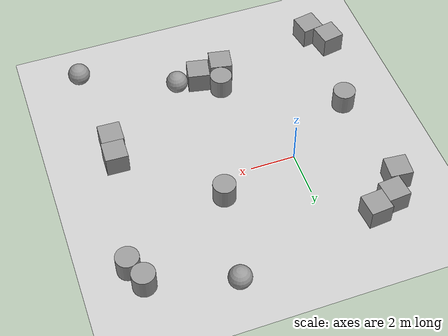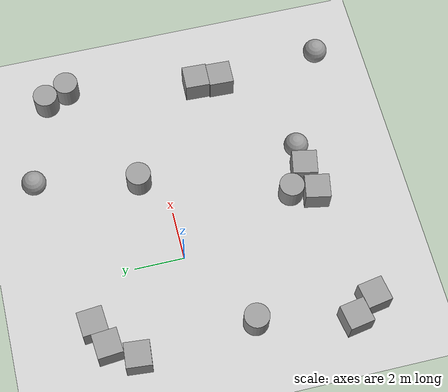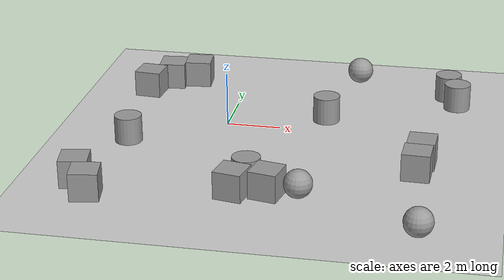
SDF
<sdf version="1.7">
 <world name="default">
  <light name="sun" type="directional">
   <pose>0 0 10 0 -0 0</pose>
   <diffuse>0.8 0.8 0.8 1</diffuse>
   <specular>0.2 0.2 0.2 1</specular>
   <attenuation>
    <range>1000</range>
    <constant>0.9</constant>
    <linear>0.01</linear>
    <quadratic>0.001</quadratic>
   </attenuation>
   <direction>-0.5 0.1 -0.9</direction>
   <spot><inner_angle>0</inner_angle><outer_angle>0</outer_angle><falloff>0</falloff></spot>
  </light>
  <model name="ground_plane">
   <static>1</static>
   <link name="link">
    <collision name="collision">
     <geometry><plane><normal>0 0 1</normal><size>100 100</size></plane></geometry>
     <surface><friction><ode><mu>100</mu><mu2>50</mu2></ode></friction></surface>
    </collision>
    <visual name="visual">
     <cast_shadows>0</cast_shadows>
     <geometry><plane><normal>0 0 1</normal><size>100 100</size></plane></geometry>
     <material>
      <script><uri>file://media/materials/scripts/gazebo.material</uri><name>Gazebo/Grey</name></script>
     </material>
    </visual>
   </link>
  </model>
  <gravity>0 0 -9.8</gravity>
  <magnetic_field>6e-06 2.3e-05 -4.2e-05</magnetic_field>
  <atmosphere type="adiabatic"/>
  <physics type="ode">
   <max_step_size>0.001</max_step_size>
   <real_time_factor>1</real_time_factor>
   <real_time_update_rate>1000</real_time_update_rate>
  </physics>
  <scene><ambient>0.4 0.4 0.4 1</ambient><background>0.7 0.7 0.7 1</background><shadows>1</shadows></scene>
  <audio><device>default</device></audio>
  <spherical_coordinates>
   <surface_model>EARTH_WGS84</surface_model>
   <latitude_deg>0</latitude_deg>
   <longitude_deg>0</longitude_deg>
   <elevation>0</elevation>
   <heading_deg>0</heading_deg>
  </spherical_coordinates>
  <model name="unit_box">
   <pose>1.42671 -5.79714 0.499999 -2e-06 -0 -0.188596</pose>
   <link name="link">
    <inertial>
     <mass>1</mass>
     <inertia>
      <ixx>0.166667</ixx>
      <ixy>0</ixy>
      <ixz>0</ixz>
      <iyy>0.166667</iyy>
      <iyz>0</iyz>
      <izz>0.166667</izz>
     </inertia>
    </inertial>
    <collision name="collision"><geometry><box><size>1 1 1</size></box></geometry></collision>
    <visual name="visual">
     <geometry><box><size>1 1 1</size></box></geometry>
     <material>
      <script><name>Gazebo/Grey</name><uri>file://media/materials/scripts/gazebo.material</uri></script>
     </material>
    </visual>
   </link>
  </model>
  <model name="unit_box_0">
   <pose>2.57598 -5.5859 0.499996 -9e-06 -0 -0.199263</pose>
   <link name="link">
    <inertial>
     <mass>1</mass>
     <inertia>
      <ixx>0.166667</ixx>
      <ixy>0</ixy>
      <ixz>0</ixz>
      <iyy>0.166667</iyy>
      <iyz>0</iyz>
      <izz>0.166667</izz>
     </inertia>
    </inertial>
    <collision name="collision"><geometry><box><size>1 1 1</size></box></geometry></collision>
    <visual name="visual">
     <geometry><box><size>1 1 1</size></box></geometry>
     <material>
      <script><name>Gazebo/Grey</name><uri>file://media/materials/scripts/gazebo.material</uri></script>
     </material>
    </visual>
   </link>
  </model>
  <model name="unit_sphere">
   <pose>3.61828 -5.54407 0.5 0.008258 0.04716 -0.011369</pose>
   <link name="link">
    <inertial>
     <mass>1</mass>
     <inertia><ixx>0.1</ixx><ixy>0</ixy><ixz>0</ixz><iyy>0.1</iyy><iyz>0</iyz><izz>0.1</izz></inertia>
    </inertial>
    <collision name="collision"><geometry><sphere><radius>0.5</radius></sphere></geometry></collision>
    <visual name="visual">
     <geometry><sphere><radius>0.5</radius></sphere></geometry>
     <material>
      <script><name>Gazebo/Grey</name><uri>file://media/materials/scripts/gazebo.material</uri></script>
     </material>
    </visual>
   </link>
  </model>
  <model name="unit_sphere_0">
   <pose>4.38197 5.20422 0.5 0 -0 0</pose>
   <link name="link">
    <inertial>
     <mass>1</mass>
     <inertia><ixx>0.1</ixx><ixy>0</ixy><ixz>0</ixz><iyy>0.1</iyy><iyz>0</iyz><izz>0.1</izz></inertia>
    </inertial>
    <collision name="collision"><geometry><sphere><radius>0.5</radius></sphere></geometry></collision>
    <visual name="visual">
     <geometry><sphere><radius>0.5</radius></sphere></geometry>
     <material>
      <script><name>Gazebo/Grey</name><uri>file://media/materials/scripts/gazebo.material</uri></script>
     </material>
    </visual>
   </link>
  </model>
  <model name="unit_cylinder">
   <pose>1.71411 -4.82183 0.499994 -4e-06 -2e-06 0.10459</pose>
   <link name="link">
    <inertial>
     <mass>1</mass>
     <inertia><ixx>0.145833</ixx><ixy>0</ixy><ixz>0</ixz><iyy>0.145833</iyy><iyz>0</iyz><izz>0.125</izz></inertia>
    </inertial>
    <collision name="collision">
     <geometry><cylinder><radius>0.5</radius><length>1</length></cylinder></geometry>
    </collision>
    <visual name="visual">
     <geometry><cylinder><radius>0.5</radius><length>1</length></cylinder></geometry>
     <material>
      <script><name>Gazebo/Grey</name><uri>file://media/materials/scripts/gazebo.material</uri></script>
     </material>
    </visual>
   </link>
  </model>
  <model name="unit_box_1">
   <pose>7.36696 -3.22178 0.499995 0 -1e-05 -0.03454</pose>
   <link name="link">
    <inertial>
     <mass>1</mass>
     <inertia>
      <ixx>0.166667</ixx>
      <ixy>0</ixy>
      <ixz>0</ixz>
      <iyy>0.166667</iyy>
      <iyz>0</iyz>
      <izz>0.166667</izz>
     </inertia>
    </inertial>
    <collision name="collision"><geometry><box><size>1 1 1</size></box></geometry></collision>
    <visual name="visual">
     <geometry><box><size>1 1 1</size></box></geometry>
     <material>
      <script><name>Gazebo/Grey</name><uri>file://media/materials/scripts/gazebo.material</uri></script>
     </material>
    </visual>
   </link>
  </model>
  <model name="unit_box_2">
   <pose>7.45332 -2.22415 0.499995 1e-05 -0 -0.034544</pose>
   <link name="link">
    <inertial>
     <mass>1</mass>
     <inertia>
      <ixx>0.166667</ixx>
      <ixy>0</ixy>
      <ixz>0</ixz>
      <iyy>0.166667</iyy>
      <iyz>0</iyz>
      <izz>0.166667</izz>
     </inertia>
    </inertial>
    <collision name="collision"><geometry><box><size>1 1 1</size></box></geometry></collision>
    <visual name="visual">
     <geometry><box><size>1 1 1</size></box></geometry>
     <material>
      <script><name>Gazebo/Grey</name><uri>file://media/materials/scripts/gazebo.material</uri></script>
     </material>
    </visual>
   </link>
  </model>
  <model name="unit_cylinder_0">
   <pose>3.59707 1.04751 0.499992 -3e-06 3e-06 0</pose>
   <link name="link">
    <inertial>
     <mass>1</mass>
     <inertia><ixx>0.145833</ixx><ixy>0</ixy><ixz>0</ixz><iyy>0.145833</iyy><iyz>0</iyz><izz>0.125</izz></inertia>
    </inertial>
    <collision name="collision">
     <geometry><cylinder><radius>0.5</radius><length>1</length></cylinder></geometry>
    </collision>
    <visual name="visual">
     <geometry><cylinder><radius>0.5</radius><length>1</length></cylinder></geometry>
     <material>
      <script><name>Gazebo/Grey</name><uri>file://media/materials/scripts/gazebo.material</uri></script>
     </material>
    </visual>
   </link>
  </model>
  <model name="unit_box_3">
   <pose>-2.02752 4.00818 0.500002 4e-06 -0 0.087298</pose>
   <link name="link">
    <inertial>
     <mass>1</mass>
     <inertia>
      <ixx>0.166667</ixx>
      <ixy>0</ixy>
      <ixz>0</ixz>
      <iyy>0.166667</iyy>
      <iyz>0</iyz>
      <izz>0.166667</izz>
     </inertia>
    </inertial>
    <collision name="collision"><geometry><box><size>1 1 1</size></box></geometry></collision>
    <visual name="visual">
     <geometry><box><size>1 1 1</size></box></geometry>
     <material>
      <script><name>Gazebo/Grey</name><uri>file://media/materials/scripts/gazebo.material</uri></script>
     </material>
    </visual>
   </link>
  </model>
  <model name="unit_box_4">
   <pose>-2.9981 3.62822 0.5 0 -0 0.087298</pose>
   <link name="link">
    <inertial>
     <mass>1</mass>
     <inertia>
      <ixx>0.166667</ixx>
      <ixy>0</ixy>
      <ixz>0</ixz>
      <iyy>0.166667</iyy>
      <iyz>0</iyz>
      <izz>0.166667</izz>
     </inertia>
    </inertial>
    <collision name="collision"><geometry><box><size>1 1 1</size></box></geometry></collision>
    <visual name="visual">
     <geometry><box><size>1 1 1</size></box></geometry>
     <material>
      <script><name>Gazebo/Grey</name><uri>file://media/materials/scripts/gazebo.material</uri></script>
     </material>
    </visual>
   </link>
  </model>
  <model name="unit_box_5">
   <pose>-3.66191 2.60334 0.499995 1e-05 -0 -0.089766</pose>
   <link name="link">
    <inertial>
     <mass>1</mass>
     <inertia>
      <ixx>0.166667</ixx>
      <ixy>0</ixy>
      <ixz>0</ixz>
      <iyy>0.166667</iyy>
      <iyz>0</iyz>
      <izz>0.166667</izz>
     </inertia>
    </inertial>
    <collision name="collision"><geometry><box><size>1 1 1</size></box></geometry></collision>
    <visual name="visual">
     <geometry><box><size>1 1 1</size></box></geometry>
     <material>
      <script><name>Gazebo/Grey</name><uri>file://media/materials/scripts/gazebo.material</uri></script>
     </material>
    </visual>
   </link>
  </model>
  <model name="unit_cylinder_1">
   <pose>-3.24265 -2.08766 0.499998 3e-06 -4e-06 0</pose>
   <link name="link">
    <inertial>
     <mass>1</mass>
     <inertia><ixx>0.145833</ixx><ixy>0</ixy><ixz>0</ixz><iyy>0.145833</iyy><iyz>0</iyz><izz>0.125</izz></inertia>
    </inertial>
    <collision name="collision">
     <geometry><cylinder><radius>0.5</radius><length>1</length></cylinder></geometry>
    </collision>
    <visual name="visual">
     <geometry><cylinder><radius>0.5</radius><length>1</length></cylinder></geometry>
     <material>
      <script><name>Gazebo/Grey</name><uri>file://media/materials/scripts/gazebo.material</uri></script>
     </material>
    </visual>
   </link>
  </model>
  <model name="unit_sphere_1">
   <pose>7.77641 -7.52345 0.5 0 -0 0</pose>
   <link name="link">
    <inertial>
     <mass>1</mass>
     <inertia><ixx>0.1</ixx><ixy>0</ixy><ixz>0</ixz><iyy>0.1</iyy><iyz>0</iyz><izz>0.1</izz></inertia>
    </inertial>
    <collision name="collision"><geometry><sphere><radius>0.5</radius></sphere></geometry></collision>
    <visual name="visual">
     <geometry><sphere><radius>0.5</radius></sphere></geometry>
     <material>
      <script><name>Gazebo/Grey</name><uri>file://media/materials/scripts/gazebo.material</uri></script>
     </material>
    </visual>
   </link>
  </model>
  <model name="unit_box_6">
   <pose>-4.03395 -5.79759 0.499999 -2e-06 -0 0.174894</pose>
   <link name="link">
    <inertial>
     <mass>1</mass>
     <inertia>
      <ixx>0.166667</ixx>
      <ixy>0</ixy>
      <ixz>0</ixz>
      <iyy>0.166667</iyy>
      <iyz>0</iyz>
      <izz>0.166667</izz>
     </inertia>
    </inertial>
    <collision name="collision"><geometry><box><size>1 1 1</size></box></geometry></collision>
    <visual name="visual">
     <geometry><box><size>1 1 1</size></box></geometry>
     <material>
      <script><name>Gazebo/Grey</name><uri>file://media/materials/scripts/gazebo.material</uri></script>
     </material>
    </visual>
   </link>
  </model>
  <model name="unit_box_7">
   <pose>-3.37673 -6.70031 0.500002 -4e-06 -0 0.174892</pose>
   <link name="link">
    <inertial>
     <mass>1</mass>
     <inertia>
      <ixx>0.166667</ixx>
      <ixy>0</ixy>
      <ixz>0</ixz>
      <iyy>0.166667</iyy>
      <iyz>0</iyz>
      <izz>0.166667</izz>
     </inertia>
    </inertial>
    <collision name="collision"><geometry><box><size>1 1 1</size></box></geometry></collision>
    <visual name="visual">
     <geometry><box><size>1 1 1</size></box></geometry>
     <material>
      <script><name>Gazebo/Grey</name><uri>file://media/materials/scripts/gazebo.material</uri></script>
     </material>
    </visual>
   </link>
  </model>
  <model name="unit_cylinder_2">
   <pose>7.98823 4.05849 0.499994 -4e-06 -3e-06 0.171539</pose>
   <link name="link">
    <inertial>
     <mass>1</mass>
     <inertia><ixx>0.145833</ixx><ixy>0</ixy><ixz>0</ixz><iyy>0.145833</iyy><iyz>0</iyz><izz>0.125</izz></inertia>
    </inertial>
    <collision name="collision">
     <geometry><cylinder><radius>0.5</radius><length>1</length></cylinder></geometry>
    </collision>
    <visual name="visual">
     <geometry><cylinder><radius>0.5</radius><length>1</length></cylinder></geometry>
     <material>
      <script><name>Gazebo/Grey</name><uri>file://media/materials/scripts/gazebo.material</uri></script>
     </material>
    </visual>
   </link>
  </model>
  <model name="unit_cylinder_3">
   <pose>8.38304 3.1361 0.499998 -1e-06 1e-06 -0.094708</pose>
   <link name="link">
    <inertial>
     <mass>1</mass>
     <inertia><ixx>0.145833</ixx><ixy>0</ixy><ixz>0</ixz><iyy>0.145833</iyy><iyz>0</iyz><izz>0.125</izz></inertia>
    </inertial>
    <collision name="collision">
     <geometry><cylinder><radius>0.5</radius><length>1</length></cylinder></geometry>
    </collision>
    <visual name="visual">
     <geometry><cylinder><radius>0.5</radius><length>1</length></cylinder></geometry>
     <material>
      <script><name>Gazebo/Grey</name><uri>file://media/materials/scripts/gazebo.material</uri></script>
     </material>
    </visual>
   </link>
  </model>
 </world>
</sdf>
